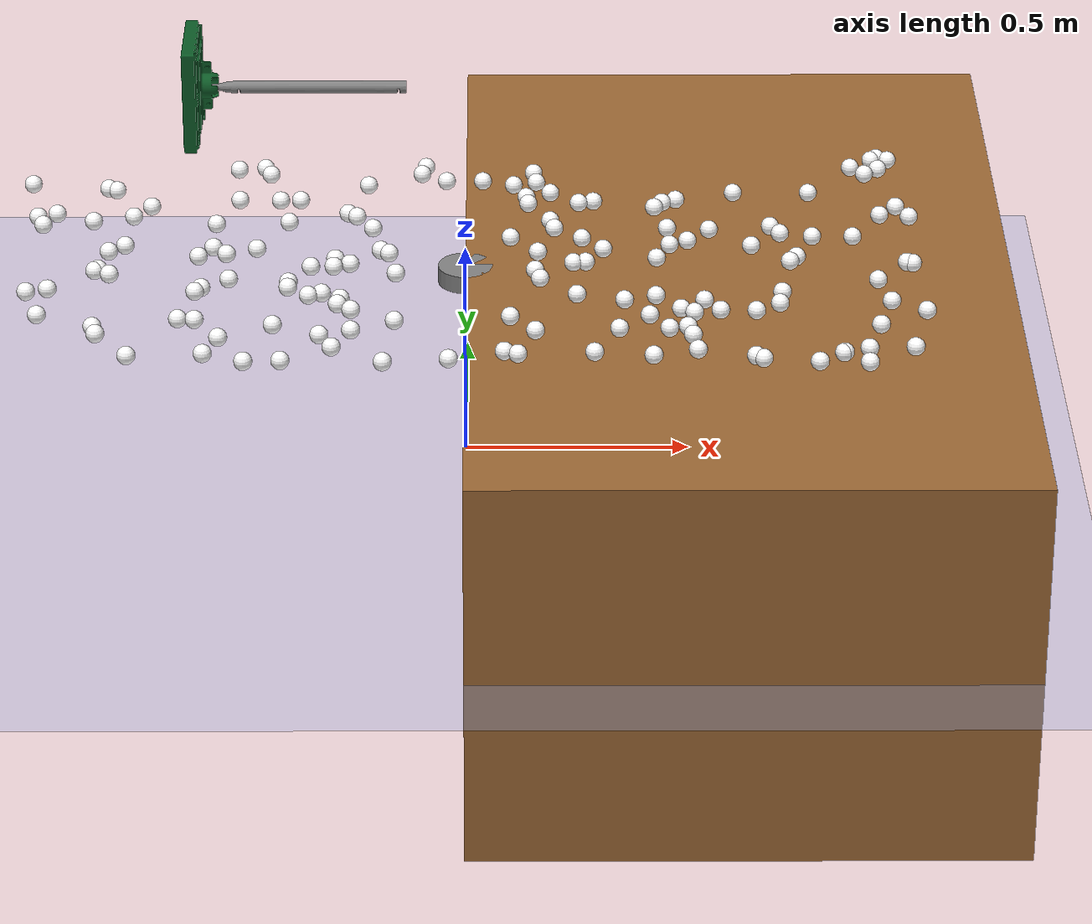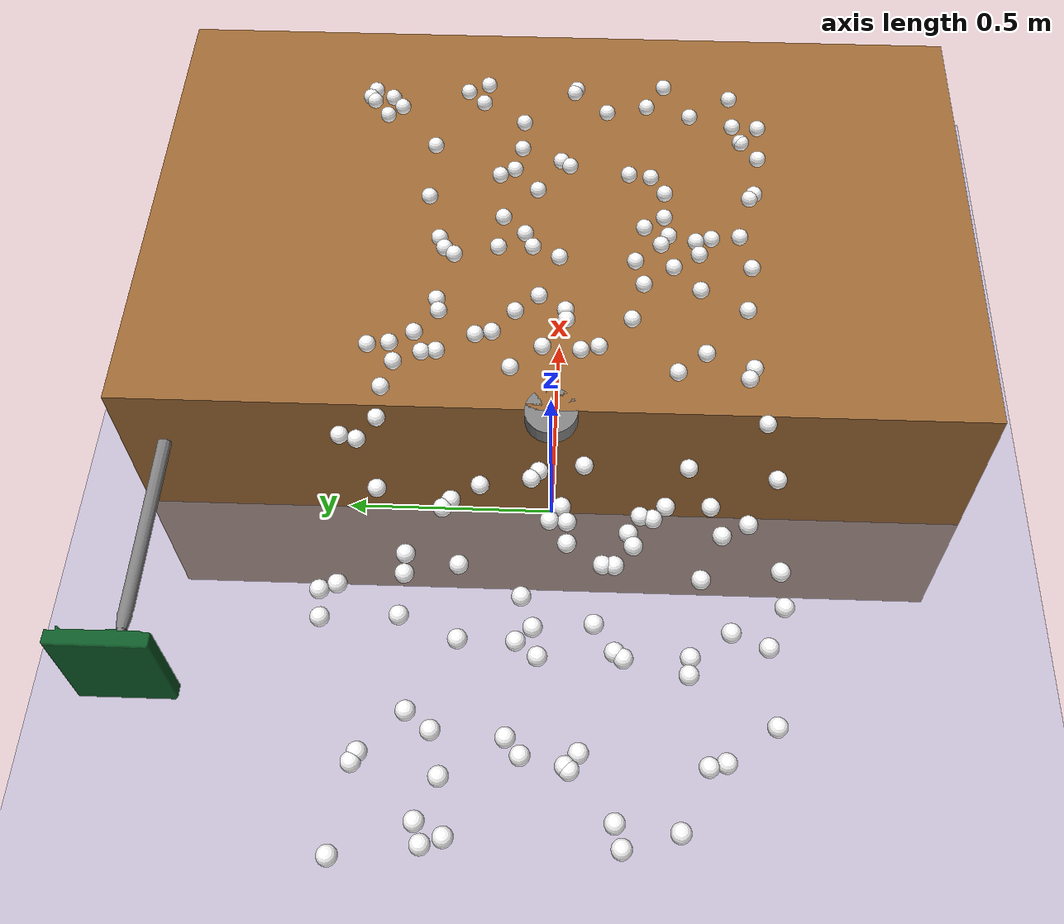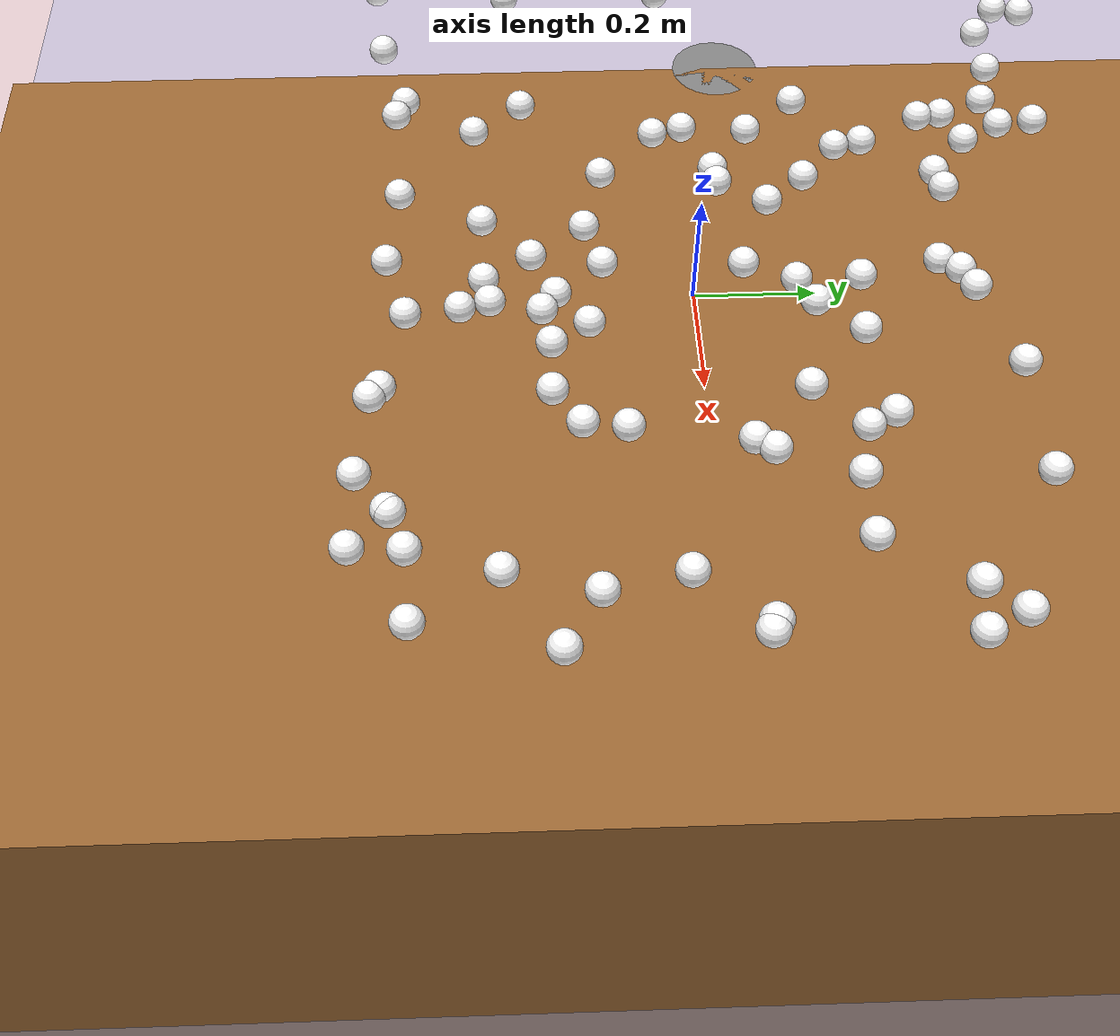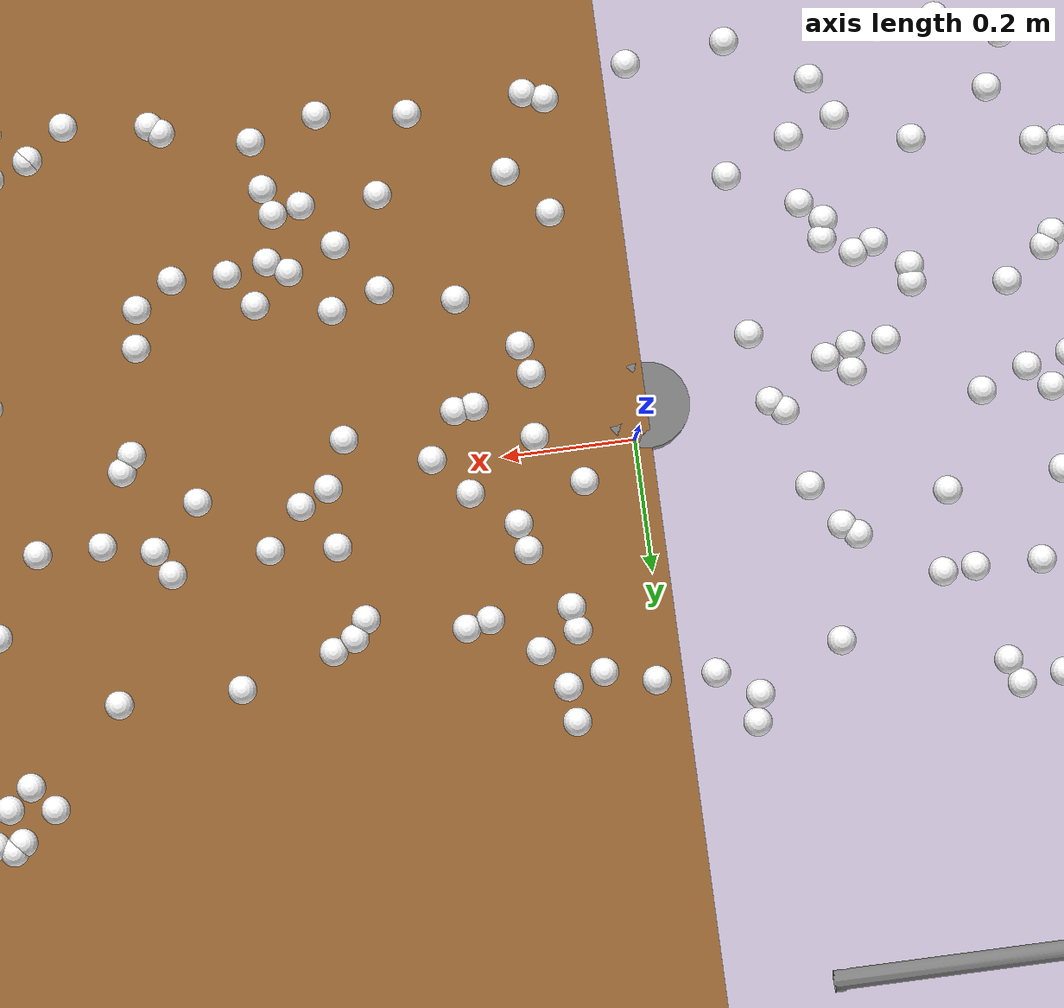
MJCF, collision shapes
<?xml version="1.0" encoding="UTF-8"?>

<mujoco model="ur5e_with_mop_and_dust">
   <compiler angle="radian" meshdir="assets" autolimits="true" />
   <option integrator="implicitfast" timestep="0.01" viscosity="0.01" />

   <!-- ================= DEFAULT SETTINGS ================= -->
   <default>
      <default class="ur5e">
         <default class="visual">
            <geom type="mesh" contype="0" conaffinity="0" group="2" />
         </default>
         <default class="collision">
            <geom type="capsule" group="3" />
            <default class="eef_collision">
               <geom type="cylinder" />
            </default>
         </default>
         <joint axis="0 1 0" range="-6.28319 6.28319" />
         <default class="joint_limited">
            <joint range="-3.1415 3.1415" />
         </default>
         <default class="position">
            <position ctrlrange="-6.2831 6.2831" kp="500" kv="25" forcerange="-150 150" />
            <default class="position_limited">
               <position ctrlrange="-3.1415 3.1415" />
            </default>
            <default class="position_small">
               <position kp="500" kv="25" forcerange="-28 28" />
            </default>
         </default>
      </default>
      <!-- Improved dust particle physics for MuJoCo 3.3.5 -->
      <default class="dust">
         <geom type="sphere" size="0.008" density="600" friction="0.8 0.1 0.05" condim="3"
            contype="1" conaffinity="1" group="1"
            solref="0.02 1.0" solimp="0.9 0.95 0.001" />
      </default>
   </default>

   <!-- ================= VISUAL SETTINGS ================= -->

   <!-- ================= MATERIALS + MESHES ================= -->
   <asset>
      <texture name="skybox" type="skybox" builtin="gradient"
         rgb1="0.7 0.85 1" rgb2="0.2 0.3 0.5" width="512" height="512" />
      <texture name="ground_tex" type="2d" builtin="checker" width="512" height="512"
         rgb1="0.2 0.4 0.8" rgb2="0.9 0.9 1" mark="cross" random="0.01" />
      <material name="ground_mat" texture="ground_tex" texrepeat="4 4"
         rgba="1 1 1 1" specular="1" shininess="1" reflectance="0.5" />
      <material name="black" rgba="0.033 0.033 0.033 1" />
      <material name="jointgray" rgba="0.278 0.278 0.278 1" />
      <material name="linkgray" rgba="0.82 0.82 0.82 1" />
      <material name="urblue" rgba="0.49 0.678 0.8 1" />
      <material name="table_material" rgba="0.6 0.4 0.2 1" />
      <material name="dust_material" rgba="1 1 1 1" />
      <!-- Purple material for the mop -->
      <material name="mop_purple" rgba="0.18 0.05 0.35 1" specular="0.5" shininess="0.6" />
      <!-- Dark green material for the mop -->
      <material name="mop_dark_green" rgba="0.05 0.35 0.15 1" specular="0.4" shininess="0.5" />

      <!-- Robot meshes -->
      <mesh file="base_0.obj" />
      <mesh file="base_1.obj" />
      <mesh file="shoulder_0.obj" />
      <mesh file="shoulder_1.obj" />
      <mesh file="shoulder_2.obj" />
      <mesh file="upperarm_0.obj" />
      <mesh file="upperarm_1.obj" />
      <mesh file="upperarm_2.obj" />
      <mesh file="upperarm_3.obj" />
      <mesh file="forearm_0.obj" />
      <mesh file="forearm_1.obj" />
      <mesh file="forearm_2.obj" />
      <mesh file="forearm_3.obj" />
      <mesh file="wrist1_0.obj" />
      <mesh file="wrist1_1.obj" />
      <mesh file="wrist1_2.obj" />
      <mesh file="wrist2_0.obj" />
      <mesh file="wrist2_1.obj" />
      <mesh file="wrist2_2.obj" />
      <mesh file="wrist3.obj" />

      <!-- Table and tool meshes -->
      <mesh file="test.stl" scale="1 1 1" name="table" />
      <mesh name="base_mesh" file="mop_base.obj" scale="0.002 0.002 0.002" />
      <mesh name="handle_mesh" file="mop_handle.obj" scale="0.0015 0.001 0.0015" />
   </asset>

   <!-- Visual settings: skybox + haze for infinite horizon look -->
   <visual>
      <map znear="0.01" zfar="200" fogstart="8" fogend="60" />
   </visual>

   <!-- ================= WORLD OBJECTS ================= -->

   <!-- ================= WORLD OBJECTS ================= -->
   <worldbody>
      <!-- Key lights -->
      <light name="sun_key" directional="true" pos="0 0 5" dir="0 0 -1"
         diffuse="0.15 0.15 0.15" ambient="0.15 0.15 0.15" specular="0.15 0.15 0.15"
         castshadow="false" />
      <!-- Ground with proper contact properties -->
      <geom name="ground" type="plane" size="10 10 0.1" material="ground_mat"
         rgba="0.5 0.5 0.5 1" pos="0 0 0"
         solref="0.02 1.0" solimp="0.9 0.95 0.001" friction="0.9 0.1 0.05" />
      <!-- pos="-1.35 -0.7 -0.01" -->

      <!-- Table positioned as base platform -->
      <body name="table" pos="0.6 0 0" euler="0 0 1.57079632679">
         <inertial mass="50" pos="0 0 0.05" diaginertia="10 10 5" />
         <geom name="table_collision" type="box" size="1 0.6 0.45" pos="0.0 0.0 0.01"
            material="table_material" group="3" contype="1" conaffinity="1"
            solref="0.02 1.0" solimp="0.9 0.95 0.001" friction="0.7 0.1 0.05" />
         <geom name="table_visual" type="mesh" mesh="table" material="table_material" class="visual"
            pos="1 0.6 0" />
         <!-- 45-deg wedges along table edges (width ≈ 0.10 m, thickness ≈ 0.02 m) -->
         <!-- Table collision box extents in table frame: x in [-2.7, 0], y in [-1.4, 0], top z ≈
        0.49 -->
         <!-- y = 0 edge (north), tilt toward -y -->

         <!-- y = -1.4 edge (south), tilt toward +y -->

         <!-- x = 0 edge (east), tilt toward -x -->

         <!-- x = -2.7 edge (west), tilt toward +x -->
      </body>

      <!-- UR5e Robot mounted ON the table surface -->
      <body name="base" pos="0.0 0.0 0.45" quat="1 0 0 1" childclass="ur5e">
         <inertial mass="4" pos="0 0 0" diaginertia="0.0044 0.0044 0.0072" />
         <geom mesh="base_0" material="black" class="visual" />
         <geom mesh="base_1" material="jointgray" class="visual" />
         <!-- Base collision geometry to sit on table -->
         <geom name="base_collision" type="cylinder" size="0.06 0.02" pos="0 0 -0.01"
            contype="1" conaffinity="1" group="3" friction="0.8 0.1 0.05" />

         <body name="shoulder_link" pos="0 0 0.163">
            <inertial mass="3.7" pos="0 0 0" diaginertia="0.0102 0.0102 0.0066" />
            <joint name="shoulder_pan" axis="0 0 1" />
            <geom mesh="shoulder_0" material="urblue" class="visual" />
            <geom mesh="shoulder_1" material="black" class="visual" />
            <geom mesh="shoulder_2" material="jointgray" class="visual" />

            <body name="upper_arm_link" pos="0 0.138 0" quat="1 0 1 0">
               <inertial mass="8.39" pos="0 0 0.2125" diaginertia="0.133 0.133 0.015" />
               <joint name="shoulder_lift" />
               <geom mesh="upperarm_0" material="linkgray" class="visual" />
               <geom mesh="upperarm_1" material="black" class="visual" />
               <geom mesh="upperarm_2" material="jointgray" class="visual" />
               <geom mesh="upperarm_3" material="urblue" class="visual" />

               <body name="forearm_link" pos="0 -0.131 0.425">
                  <inertial mass="2.27" pos="0 0 0.196" diaginertia="0.031 0.031 0.004" />
                  <joint name="elbow" class="joint_limited" />
                  <geom mesh="forearm_0" material="urblue" class="visual" />
                  <geom mesh="forearm_1" material="linkgray" class="visual" />
                  <geom mesh="forearm_2" material="black" class="visual" />
                  <geom mesh="forearm_3" material="jointgray" class="visual" />

                  <body name="wrist_1_link" pos="0 0 0.392" quat="1 0 1 0">
                     <inertial mass="1.219" pos="0 0.127 0" diaginertia="0.0025 0.0025 0.0021" />
                     <joint name="wrist_1" />
                     <geom mesh="wrist1_0" material="black" class="visual" />
                     <geom mesh="wrist1_1" material="urblue" class="visual" />
                     <geom mesh="wrist1_2" material="jointgray" class="visual" />

                     <body name="wrist_2_link" pos="0 0.127 0">
                        <inertial mass="1.219" pos="0 0 0.1" diaginertia="0.0025 0.0025 0.0021" />
                        <joint name="wrist_2" axis="0 0 1" />
                        <geom mesh="wrist2_0" material="black" class="visual" />
                        <geom mesh="wrist2_1" material="urblue" class="visual" />
                        <geom mesh="wrist2_2" material="jointgray" class="visual" />

                        <body name="wrist_3_link" pos="0 0 0.1">
                           <inertial mass="0.188" pos="0 0.077 0"
                              diaginertia="0.00013 0.0001 0.0001" />
                           <joint name="wrist_3" />
                           <geom mesh="wrist3" material="linkgray" class="visual" />

                           <!-- Mop tool attachment -->
                           <body name="mop_mount" pos="0 0.08 0" quat="0 1 0 1">

                              <body name="mop_tool" pos="0 -0.4 0">
                                 <inertial mass="0.5" pos="0 0 0" diaginertia="0.01 0.01 0.01" />
                                 <geom type="mesh" mesh="handle_mesh" density="500"
                                    friction="0.8 0.1 0.1" />

                                 <body name="mop_head">
                                    <joint name="mop_socket" type="ball" damping="0.5"
                                       limited="false" />
                                    <site name="ee_site" pos="0 -0.02 0.0" size="0.01"
                                       rgba="1 0 0 1" group="4" />
                                    <inertial mass="0.2" pos="0 -0.05 -0.1"
                                       diaginertia="0.005 0.005 0.005" />
                                    <geom type="mesh" mesh="base_mesh" density="500"
                                       friction="0.8 0.1 0.1"
                                       pos="0 -0.05 -0.1" material="mop_dark_green" />
                                 </body>  <!--
                      mop_head -->
                              </body>    <!--
                    mop_tool -->
                           </body>      <!--
                  mop_mount -->
                        </body>        <!--
                wrist_3_link -->
                     </body>          <!--
              wrist_2_link -->
                  </body>            <!--
            wrist_1_link -->
               </body>              <!--
          forearm_link -->
            </body>                <!--
        upper_arm_link -->
         </body>                  <!--
      shoulder_link -->
      </body>                    <!--
    base -->

      <!-- Dust particles properly positioned on table surface around the robot -->
      <!-- Distributed in a cleaning area away from robot base -->
      <!-- Dust balls (stable with solver parameters) -->

      <!-- Dust particles - stable until mop pushes them -->

      <body name="ball_1" pos="-0.7055 0.2521 0.48">
         <freejoint />
         <inertial mass="0.03" diaginertia="5.6e-05 5.6e-05 5.6e-05" pos="0 0 0" />
         <geom type="sphere" size="0.02" material="dust_material" />
      </body>
      <body name="ball_2" pos="-0.2825 -0.4197 0.48">
         <freejoint />
         <inertial mass="0.03" diaginertia="5.6e-05 5.6e-05 5.6e-05" pos="0 0 0" />
         <geom type="sphere" size="0.02" material="dust_material" />
      </body>
      <body name="ball_3" pos="0.8755 0.449 0.48">
         <freejoint />
         <inertial mass="0.03" diaginertia="5.6e-05 5.6e-05 5.6e-05" pos="0 0 0" />
         <geom type="sphere" size="0.02" material="dust_material" />
      </body>
      <body name="ball_4" pos="0.5409 0.1351 0.48">
         <freejoint />
         <inertial mass="0.03" diaginertia="5.6e-05 5.6e-05 5.6e-05" pos="0 0 0" />
         <geom type="sphere" size="0.02" material="dust_material" />
      </body>
      <body name="ball_5" pos="-0.9071 -0.15 0.48">
         <freejoint />
         <inertial mass="0.03" diaginertia="5.6e-05 5.6e-05 5.6e-05" pos="0 0 0" />
         <geom type="sphere" size="0.02" material="dust_material" />
      </body>
      <body name="ball_6" pos="-0.4169 0.2821 0.48">
         <freejoint />
         <inertial mass="0.03" diaginertia="5.6e-05 5.6e-05 5.6e-05" pos="0 0 0" />
         <geom type="sphere" size="0.02" material="dust_material" />
      </body>
      <body name="ball_7" pos="-0.5863 -0.1627 0.48">
         <freejoint />
         <inertial mass="0.03" diaginertia="5.6e-05 5.6e-05 5.6e-05" pos="0 0 0" />
         <geom type="sphere" size="0.02" material="dust_material" />
      </body>
      <body name="ball_8" pos="-0.9204 -0.2712 0.48">
         <freejoint />
         <inertial mass="0.03" diaginertia="5.6e-05 5.6e-05 5.6e-05" pos="0 0 0" />
         <geom type="sphere" size="0.02" material="dust_material" />
      </body>
      <body name="ball_9" pos="0.4209 -0.0038 0.48">
         <freejoint />
         <inertial mass="0.03" diaginertia="5.6e-05 5.6e-05 5.6e-05" pos="0 0 0" />
         <geom type="sphere" size="0.02" material="dust_material" />
      </body>
      <body name="ball_10" pos="0.6338 -0.472 0.48">
         <freejoint />
         <inertial mass="0.03" diaginertia="5.6e-05 5.6e-05 5.6e-05" pos="0 0 0" />
         <geom type="sphere" size="0.02" material="dust_material" />
      </body>
      <body name="ball_11" pos="0.6979 0.1153 0.48">
         <freejoint />
         <inertial mass="0.03" diaginertia="5.6e-05 5.6e-05 5.6e-05" pos="0 0 0" />
         <geom type="sphere" size="0.02" material="dust_material" />
      </body>
      <body name="ball_12" pos="-0.3395 -0.1815 0.48">
         <freejoint />
         <inertial mass="0.03" diaginertia="5.6e-05 5.6e-05 5.6e-05" pos="0 0 0" />
         <geom type="sphere" size="0.02" material="dust_material" />
      </body>
      <body name="ball_13" pos="0.9053 0.4146 0.48">
         <freejoint />
         <inertial mass="0.03" diaginertia="5.6e-05 5.6e-05 5.6e-05" pos="0 0 0" />
         <geom type="sphere" size="0.02" material="dust_material" />
      </body>
      <body name="ball_14" pos="-0.8305 0.1788 0.48">
         <freejoint />
         <inertial mass="0.03" diaginertia="5.6e-05 5.6e-05 5.6e-05" pos="0 0 0" />
         <geom type="sphere" size="0.02" material="dust_material" />
      </body>
      <body name="ball_15" pos="-0.4667 -0.4841 0.48">
         <freejoint />
         <inertial mass="0.03" diaginertia="5.6e-05 5.6e-05 5.6e-05" pos="0 0 0" />
         <geom type="sphere" size="0.02" material="dust_material" />
      </body>
      <body name="ball_16" pos="0.0982 -0.2803 0.48">
         <freejoint />
         <inertial mass="0.03" diaginertia="5.6e-05 5.6e-05 5.6e-05" pos="0 0 0" />
         <geom type="sphere" size="0.02" material="dust_material" />
      </body>
      <body name="ball_17" pos="-0.5261 0.0172 0.48">
         <freejoint />
         <inertial mass="0.03" diaginertia="5.6e-05 5.6e-05 5.6e-05" pos="0 0 0" />
         <geom type="sphere" size="0.02" material="dust_material" />
      </body>
      <body name="ball_18" pos="-0.7881 -0.3586 0.48">
         <freejoint />
         <inertial mass="0.03" diaginertia="5.6e-05 5.6e-05 5.6e-05" pos="0 0 0" />
         <geom type="sphere" size="0.02" material="dust_material" />
      </body>
      <body name="ball_19" pos="0.7686 0.0999 0.48">
         <freejoint />
         <inertial mass="0.03" diaginertia="5.6e-05 5.6e-05 5.6e-05" pos="0 0 0" />
         <geom type="sphere" size="0.02" material="dust_material" />
      </body>
      <body name="ball_20" pos="-0.6161 -0.2906 0.48">
         <freejoint />
         <inertial mass="0.03" diaginertia="5.6e-05 5.6e-05 5.6e-05" pos="0 0 0" />
         <geom type="sphere" size="0.02" material="dust_material" />
      </body>
      <body name="ball_21" pos="0.6023 0.3194 0.48">
         <freejoint />
         <inertial mass="0.03" diaginertia="5.6e-05 5.6e-05 5.6e-05" pos="0 0 0" />
         <geom type="sphere" size="0.02" material="dust_material" />
      </body>
      <body name="ball_22" pos="-0.2883 -0.0435 0.48">
         <freejoint />
         <inertial mass="0.03" diaginertia="5.6e-05 5.6e-05 5.6e-05" pos="0 0 0" />
         <geom type="sphere" size="0.02" material="dust_material" />
      </body>
      <body name="ball_23" pos="-0.9563 0.202 0.48">
         <freejoint />
         <inertial mass="0.03" diaginertia="5.6e-05 5.6e-05 5.6e-05" pos="0 0 0" />
         <geom type="sphere" size="0.02" material="dust_material" />
      </body>
      <body name="ball_24" pos="0.1139 -0.4511 0.48">
         <freejoint />
         <inertial mass="0.03" diaginertia="5.6e-05 5.6e-05 5.6e-05" pos="0 0 0" />
         <geom type="sphere" size="0.02" material="dust_material" />
      </body>
      <body name="ball_25" pos="-0.7779 -0.0802 0.48">
         <freejoint />
         <inertial mass="0.03" diaginertia="5.6e-05 5.6e-05 5.6e-05" pos="0 0 0" />
         <geom type="sphere" size="0.02" material="dust_material" />
      </body>
      <body name="ball_26" pos="-0.7151 -0.4572 0.48">
         <freejoint />
         <inertial mass="0.03" diaginertia="5.6e-05 5.6e-05 5.6e-05" pos="0 0 0" />
         <geom type="sphere" size="0.02" material="dust_material" />
      </body>
      <body name="ball_27" pos="-0.5177 0.441 0.48">
         <freejoint />
         <inertial mass="0.03" diaginertia="5.6e-05 5.6e-05 5.6e-05" pos="0 0 0" />
         <geom type="sphere" size="0.02" material="dust_material" />
      </body>
      <body name="ball_28" pos="0.9589 -0.4213 0.48">
         <freejoint />
         <inertial mass="0.03" diaginertia="5.6e-05 5.6e-05 5.6e-05" pos="0 0 0" />
         <geom type="sphere" size="0.02" material="dust_material" />
      </body>
      <body name="ball_29" pos="-0.2456 -0.2487 0.48">
         <freejoint />
         <inertial mass="0.03" diaginertia="5.6e-05 5.6e-05 5.6e-05" pos="0 0 0" />
         <geom type="sphere" size="0.02" material="dust_material" />
      </body>
      <body name="ball_30" pos="-0.2432 0.2011 0.48">
         <freejoint />
         <inertial mass="0.03" diaginertia="5.6e-05 5.6e-05 5.6e-05" pos="0 0 0" />
         <geom type="sphere" size="0.02" material="dust_material" />
      </body>
      <body name="ball_31" pos="-0.5087 0.2843 0.48">
         <freejoint />
         <inertial mass="0.03" diaginertia="5.6e-05 5.6e-05 5.6e-05" pos="0 0 0" />
         <geom type="sphere" size="0.02" material="dust_material" />
      </body>
      <body name="ball_32" pos="-0.8085 0.3448 0.48">
         <freejoint />
         <inertial mass="0.03" diaginertia="5.6e-05 5.6e-05 5.6e-05" pos="0 0 0" />
         <geom type="sphere" size="0.02" material="dust_material" />
      </body>
      <body name="ball_33" pos="-0.9528 -0.1633 0.48">
         <freejoint />
         <inertial mass="0.03" diaginertia="5.6e-05 5.6e-05 5.6e-05" pos="0 0 0" />
         <geom type="sphere" size="0.02" material="dust_material" />
      </body>
      <body name="ball_34" pos="-0.2631 0.2173 0.48">
         <freejoint />
         <inertial mass="0.03" diaginertia="5.6e-05 5.6e-05 5.6e-05" pos="0 0 0" />
         <geom type="sphere" size="0.02" material="dust_material" />
      </body>
      <body name="ball_35" pos="0.2864 0.2762 0.48">
         <freejoint />
         <inertial mass="0.03" diaginertia="5.6e-05 5.6e-05 5.6e-05" pos="0 0 0" />
         <geom type="sphere" size="0.02" material="dust_material" />
      </body>
      <body name="ball_36" pos="-0.4114 -0.3183 0.48">
         <freejoint />
         <inertial mass="0.03" diaginertia="5.6e-05 5.6e-05 5.6e-05" pos="0 0 0" />
         <geom type="sphere" size="0.02" material="dust_material" />
      </body>
      <body name="ball_37" pos="-0.3106 -0.1709 0.48">
         <freejoint />
         <inertial mass="0.03" diaginertia="5.6e-05 5.6e-05 5.6e-05" pos="0 0 0" />
         <geom type="sphere" size="0.02" material="dust_material" />
      </body>
      <body name="ball_38" pos="-0.2698 -0.1953 0.48">
         <freejoint />
         <inertial mass="0.03" diaginertia="5.6e-05 5.6e-05 5.6e-05" pos="0 0 0" />
         <geom type="sphere" size="0.02" material="dust_material" />
      </body>
      <body name="ball_39" pos="0.1902 0.3199 0.48">
         <freejoint />
         <inertial mass="0.03" diaginertia="5.6e-05 5.6e-05 5.6e-05" pos="0 0 0" />
         <geom type="sphere" size="0.02" material="dust_material" />
      </body>
      <body name="ball_40" pos="-0.8037 -0.0559 0.48">
         <freejoint />
         <inertial mass="0.03" diaginertia="5.6e-05 5.6e-05 5.6e-05" pos="0 0 0" />
         <geom type="sphere" size="0.02" material="dust_material" />
      </body>
      <body name="ball_41" pos="0.9257 0.2061 0.48">
         <freejoint />
         <inertial mass="0.03" diaginertia="5.6e-05 5.6e-05 5.6e-05" pos="0 0 0" />
         <geom type="sphere" size="0.02" material="dust_material" />
      </body>
      <body name="ball_42" pos="-0.2063 0.1425 0.48">
         <freejoint />
         <inertial mass="0.03" diaginertia="5.6e-05 5.6e-05 5.6e-05" pos="0 0 0" />
         <geom type="sphere" size="0.02" material="dust_material" />
      </body>
      <body name="ball_43" pos="0.1886 0.1804 0.48">
         <freejoint />
         <inertial mass="0.03" diaginertia="5.6e-05 5.6e-05 5.6e-05" pos="0 0 0" />
         <geom type="sphere" size="0.02" material="dust_material" />
      </body>
      <body name="ball_44" pos="-0.5565 0.0491 0.48">
         <freejoint />
         <inertial mass="0.03" diaginertia="5.6e-05 5.6e-05 5.6e-05" pos="0 0 0" />
         <geom type="sphere" size="0.02" material="dust_material" />
      </body>
      <body name="ball_45" pos="0.1359 0.2984 0.48">
         <freejoint />
         <inertial mass="0.03" diaginertia="5.6e-05 5.6e-05 5.6e-05" pos="0 0 0" />
         <geom type="sphere" size="0.02" material="dust_material" />
      </body>
      <body name="ball_46" pos="0.2434 -0.177 0.48">
         <freejoint />
         <inertial mass="0.03" diaginertia="5.6e-05 5.6e-05 5.6e-05" pos="0 0 0" />
         <geom type="sphere" size="0.02" material="dust_material" />
      </body>
      <body name="ball_47" pos="-0.5253 -0.3758 0.48">
         <freejoint />
         <inertial mass="0.03" diaginertia="5.6e-05 5.6e-05 5.6e-05" pos="0 0 0" />
         <geom type="sphere" size="0.02" material="dust_material" />
      </body>
      <body name="ball_48" pos="0.6187 -0.4603 0.48">
         <freejoint />
         <inertial mass="0.03" diaginertia="5.6e-05 5.6e-05 5.6e-05" pos="0 0 0" />
         <geom type="sphere" size="0.02" material="dust_material" />
      </body>
      <body name="ball_49" pos="-0.7864 0.0294 0.48">
         <freejoint />
         <inertial mass="0.03" diaginertia="5.6e-05 5.6e-05 5.6e-05" pos="0 0 0" />
         <geom type="sphere" size="0.02" material="dust_material" />
      </body>
      <body name="ball_50" pos="-0.9419 0.1613 0.48">
         <freejoint />
         <inertial mass="0.03" diaginertia="5.6e-05 5.6e-05 5.6e-05" pos="0 0 0" />
         <geom type="sphere" size="0.02" material="dust_material" />
      </body>
      <body name="ball_51" pos="-0.2207 0.3592 0.48">
         <freejoint />
         <inertial mass="0.03" diaginertia="5.6e-05 5.6e-05 5.6e-05" pos="0 0 0" />
         <geom type="sphere" size="0.02" material="dust_material" />
      </body>
      <body name="ball_52" pos="-0.1004 0.4171 0.48">
         <freejoint />
         <inertial mass="0.03" diaginertia="5.6e-05 5.6e-05 5.6e-05" pos="0 0 0" />
         <geom type="sphere" size="0.02" material="dust_material" />
      </body>
      <body name="ball_53" pos="0.4885 -0.3645 0.48">
         <freejoint />
         <inertial mass="0.03" diaginertia="5.6e-05 5.6e-05 5.6e-05" pos="0 0 0" />
         <geom type="sphere" size="0.02" material="dust_material" />
      </body>
      <body name="ball_54" pos="0.9249 0.488 0.48">
         <freejoint />
         <inertial mass="0.03" diaginertia="5.6e-05 5.6e-05 5.6e-05" pos="0 0 0" />
         <geom type="sphere" size="0.02" material="dust_material" />
      </body>
      <body name="ball_55" pos="0.4788 -0.3271 0.48">
         <freejoint />
         <inertial mass="0.03" diaginertia="5.6e-05 5.6e-05 5.6e-05" pos="0 0 0" />
         <geom type="sphere" size="0.02" material="dust_material" />
      </body>
      <body name="ball_56" pos="0.0852 -0.4393 0.48">
         <freejoint />
         <inertial mass="0.03" diaginertia="5.6e-05 5.6e-05 5.6e-05" pos="0 0 0" />
         <geom type="sphere" size="0.02" material="dust_material" />
      </body>
      <body name="ball_57" pos="0.772 0.3185 0.48">
         <freejoint />
         <inertial mass="0.03" diaginertia="5.6e-05 5.6e-05 5.6e-05" pos="0 0 0" />
         <geom type="sphere" size="0.02" material="dust_material" />
      </body>
      <body name="ball_58" pos="0.4912 0.0803 0.48">
         <freejoint />
         <inertial mass="0.03" diaginertia="5.6e-05 5.6e-05 5.6e-05" pos="0 0 0" />
         <geom type="sphere" size="0.02" material="dust_material" />
      </body>
      <body name="ball_59" pos="0.9375 0.4415 0.48">
         <freejoint />
         <inertial mass="0.03" diaginertia="5.6e-05 5.6e-05 5.6e-05" pos="0 0 0" />
         <geom type="sphere" size="0.02" material="dust_material" />
      </body>
      <body name="ball_60" pos="0.2373 -0.0261 0.48">
         <freejoint />
         <inertial mass="0.03" diaginertia="5.6e-05 5.6e-05 5.6e-05" pos="0 0 0" />
         <geom type="sphere" size="0.02" material="dust_material" />
      </body>
      <body name="ball_61" pos="0.4966 -0.4322 0.48">
         <freejoint />
         <inertial mass="0.03" diaginertia="5.6e-05 5.6e-05 5.6e-05" pos="0 0 0" />
         <geom type="sphere" size="0.02" material="dust_material" />
      </body>
      <body name="ball_62" pos="-0.1515 -0.0764 0.48">
         <freejoint />
         <inertial mass="0.03" diaginertia="5.6e-05 5.6e-05 5.6e-05" pos="0 0 0" />
         <geom type="sphere" size="0.02" material="dust_material" />
      </body>
      <body name="ball_63" pos="-0.3846 -0.1189 0.48">
         <freejoint />
         <inertial mass="0.03" diaginertia="5.6e-05 5.6e-05 5.6e-05" pos="0 0 0" />
         <geom type="sphere" size="0.02" material="dust_material" />
      </body>
      <body name="ball_64" pos="-0.2432 -0.3427 0.48">
         <freejoint />
         <inertial mass="0.03" diaginertia="5.6e-05 5.6e-05 5.6e-05" pos="0 0 0" />
         <geom type="sphere" size="0.02" material="dust_material" />
      </body>
      <body name="ball_65" pos="0.8055 -0.4466 0.48">
         <freejoint />
         <inertial mass="0.03" diaginertia="5.6e-05 5.6e-05 5.6e-05" pos="0 0 0" />
         <geom type="sphere" size="0.02" material="dust_material" />
      </body>
      <body name="ball_66" pos="0.4144 -0.1835 0.48">
         <freejoint />
         <inertial mass="0.03" diaginertia="5.6e-05 5.6e-05 5.6e-05" pos="0 0 0" />
         <geom type="sphere" size="0.02" material="dust_material" />
      </body>
      <body name="ball_67" pos="0.1533 -0.0613 0.48">
         <freejoint />
         <inertial mass="0.03" diaginertia="5.6e-05 5.6e-05 5.6e-05" pos="0 0 0" />
         <geom type="sphere" size="0.02" material="dust_material" />
      </body>
      <body name="ball_68" pos="0.8609 -0.4262 0.48">
         <freejoint />
         <inertial mass="0.03" diaginertia="5.6e-05 5.6e-05 5.6e-05" pos="0 0 0" />
         <geom type="sphere" size="0.02" material="dust_material" />
      </body>
      <body name="ball_69" pos="0.4392 -0.3346 0.48">
         <freejoint />
         <inertial mass="0.03" diaginertia="5.6e-05 5.6e-05 5.6e-05" pos="0 0 0" />
         <geom type="sphere" size="0.02" material="dust_material" />
      </body>
      <body name="ball_70" pos="-0.1725 -0.4867 0.48">
         <freejoint />
         <inertial mass="0.03" diaginertia="5.6e-05 5.6e-05 5.6e-05" pos="0 0 0" />
         <geom type="sphere" size="0.02" material="dust_material" />
      </body>
      <body name="ball_71" pos="0.4406 0.2701 0.48">
         <freejoint />
         <inertial mass="0.03" diaginertia="5.6e-05 5.6e-05 5.6e-05" pos="0 0 0" />
         <geom type="sphere" size="0.02" material="dust_material" />
      </body>
      <body name="ball_72" pos="0.7292 0.0015 0.48">
         <freejoint />
         <inertial mass="0.03" diaginertia="5.6e-05 5.6e-05 5.6e-05" pos="0 0 0" />
         <geom type="sphere" size="0.02" material="dust_material" />
      </body>
      <body name="ball_73" pos="0.4669 -0.2445 0.48">
         <freejoint />
         <inertial mass="0.03" diaginertia="5.6e-05 5.6e-05 5.6e-05" pos="0 0 0" />
         <geom type="sphere" size="0.02" material="dust_material" />
      </body>
      <body name="ball_74" pos="0.1521 -0.3451 0.48">
         <freejoint />
         <inertial mass="0.03" diaginertia="5.6e-05 5.6e-05 5.6e-05" pos="0 0 0" />
         <geom type="sphere" size="0.02" material="dust_material" />
      </body>
      <body name="ball_75" pos="-0.3721 0.2836 0.48">
         <freejoint />
         <inertial mass="0.03" diaginertia="5.6e-05 5.6e-05 5.6e-05" pos="0 0 0" />
         <geom type="sphere" size="0.02" material="dust_material" />
      </body>
      <body name="ball_76" pos="0.0378 0.3802 0.48">
         <freejoint />
         <inertial mass="0.03" diaginertia="5.6e-05 5.6e-05 5.6e-05" pos="0 0 0" />
         <geom type="sphere" size="0.02" material="dust_material" />
      </body>
      <body name="ball_77" pos="0.1 0.0962 0.48">
         <freejoint />
         <inertial mass="0.03" diaginertia="5.6e-05 5.6e-05 5.6e-05" pos="0 0 0" />
         <geom type="sphere" size="0.02" material="dust_material" />
      </body>
      <body name="ball_78" pos="0.2769 -0.4433 0.48">
         <freejoint />
         <inertial mass="0.03" diaginertia="5.6e-05 5.6e-05 5.6e-05" pos="0 0 0" />
         <geom type="sphere" size="0.02" material="dust_material" />
      </body>
      <body name="ball_79" pos="-0.811 -0.0632 0.48">
         <freejoint />
         <inertial mass="0.03" diaginertia="5.6e-05 5.6e-05 5.6e-05" pos="0 0 0" />
         <geom type="sphere" size="0.02" material="dust_material" />
      </body>
      <body name="ball_80" pos="0.6315 0.0557 0.48">
         <freejoint />
         <inertial mass="0.03" diaginertia="5.6e-05 5.6e-05 5.6e-05" pos="0 0 0" />
         <geom type="sphere" size="0.02" material="dust_material" />
      </body>
      <body name="ball_81" pos="-0.58 -0.2938 0.48">
         <freejoint />
         <inertial mass="0.03" diaginertia="5.6e-05 5.6e-05 5.6e-05" pos="0 0 0" />
         <geom type="sphere" size="0.02" material="dust_material" />
      </body>
      <body name="ball_82" pos="-0.9812 0.3669 0.48">
         <freejoint />
         <inertial mass="0.03" diaginertia="5.6e-05 5.6e-05 5.6e-05" pos="0 0 0" />
         <geom type="sphere" size="0.02" material="dust_material" />
      </body>
      <body name="ball_83" pos="-0.3381 -0.0447 0.48">
         <freejoint />
         <inertial mass="0.03" diaginertia="5.6e-05 5.6e-05 5.6e-05" pos="0 0 0" />
         <geom type="sphere" size="0.02" material="dust_material" />
      </body>
      <body name="ball_84" pos="-0.5873 0.0053 0.48">
         <freejoint />
         <inertial mass="0.03" diaginertia="5.6e-05 5.6e-05 5.6e-05" pos="0 0 0" />
         <geom type="sphere" size="0.02" material="dust_material" />
      </body>
      <body name="ball_85" pos="-0.7521 0.0587 0.48">
         <freejoint />
         <inertial mass="0.03" diaginertia="5.6e-05 5.6e-05 5.6e-05" pos="0 0 0" />
         <geom type="sphere" size="0.02" material="dust_material" />
      </body>
      <body name="ball_86" pos="0.8929 -0.3191 0.48">
         <freejoint />
         <inertial mass="0.03" diaginertia="5.6e-05 5.6e-05 5.6e-05" pos="0 0 0" />
         <geom type="sphere" size="0.02" material="dust_material" />
      </body>
      <body name="ball_87" pos="0.7519 -0.486 0.48">
         <freejoint />
         <inertial mass="0.03" diaginertia="5.6e-05 5.6e-05 5.6e-05" pos="0 0 0" />
         <geom type="sphere" size="0.02" material="dust_material" />
      </body>
      <body name="ball_88" pos="0.7134 -0.0203 0.48">
         <freejoint />
         <inertial mass="0.03" diaginertia="5.6e-05 5.6e-05 5.6e-05" pos="0 0 0" />
         <geom type="sphere" size="0.02" material="dust_material" />
      </body>
      <body name="ball_89" pos="-0.2525 -0.0311 0.48">
         <freejoint />
         <inertial mass="0.03" diaginertia="5.6e-05 5.6e-05 5.6e-05" pos="0 0 0" />
         <geom type="sphere" size="0.02" material="dust_material" />
      </body>
      <body name="ball_90" pos="-0.4441 0.4149 0.48">
         <freejoint />
         <inertial mass="0.03" diaginertia="5.6e-05 5.6e-05 5.6e-05" pos="0 0 0" />
         <geom type="sphere" size="0.02" material="dust_material" />
      </body>
      <body name="ball_91" pos="-0.1508 -0.2992 0.48">
         <freejoint />
         <inertial mass="0.03" diaginertia="5.6e-05 5.6e-05 5.6e-05" pos="0 0 0" />
         <geom type="sphere" size="0.02" material="dust_material" />
      </body>
      <body name="ball_92" pos="0.901 -0.1098 0.48">
         <freejoint />
         <inertial mass="0.03" diaginertia="5.6e-05 5.6e-05 5.6e-05" pos="0 0 0" />
         <geom type="sphere" size="0.02" material="dust_material" />
      </body>
      <body name="ball_93" pos="-0.3103 -0.3641 0.48">
         <freejoint />
         <inertial mass="0.03" diaginertia="5.6e-05 5.6e-05 5.6e-05" pos="0 0 0" />
         <geom type="sphere" size="0.02" material="dust_material" />
      </body>
      <body name="ball_94" pos="-0.0332 -0.4729 0.48">
         <freejoint />
         <inertial mass="0.03" diaginertia="5.6e-05 5.6e-05 5.6e-05" pos="0 0 0" />
         <geom type="sphere" size="0.02" material="dust_material" />
      </body>
      <body name="ball_95" pos="-0.168 0.0195 0.48">
         <freejoint />
         <inertial mass="0.03" diaginertia="5.6e-05 5.6e-05 5.6e-05" pos="0 0 0" />
         <geom type="sphere" size="0.02" material="dust_material" />
      </body>
      <body name="ball_96" pos="-0.0442 0.3805 0.48">
         <freejoint />
         <inertial mass="0.03" diaginertia="5.6e-05 5.6e-05 5.6e-05" pos="0 0 0" />
         <geom type="sphere" size="0.02" material="dust_material" />
      </body>
      <body name="ball_97" pos="-0.3937 0.1733 0.48">
         <freejoint />
         <inertial mass="0.03" diaginertia="5.6e-05 5.6e-05 5.6e-05" pos="0 0 0" />
         <geom type="sphere" size="0.02" material="dust_material" />
      </body>
      <body name="ball_98" pos="-0.5542 -0.4488 0.48">
         <freejoint />
         <inertial mass="0.03" diaginertia="5.6e-05 5.6e-05 5.6e-05" pos="0 0 0" />
         <geom type="sphere" size="0.02" material="dust_material" />
      </body>
      <body name="ball_99" pos="0.6814 -0.2201 0.48">
         <freejoint />
         <inertial mass="0.03" diaginertia="5.6e-05 5.6e-05 5.6e-05" pos="0 0 0" />
         <geom type="sphere" size="0.02" material="dust_material" />
      </body>
      <body name="ball_100" pos="-0.4577 0.4493 0.48">
         <freejoint />
         <inertial mass="0.03" diaginertia="5.6e-05 5.6e-05 5.6e-05" pos="0 0 0" />
         <geom type="sphere" size="0.02" material="dust_material" />
      </body>
      <body name="ball_101" pos="0.629 -0.254 0.48">
         <freejoint />
         <inertial mass="0.03" diaginertia="5.6e-05 5.6e-05 5.6e-05" pos="0 0 0" />
         <geom type="sphere" size="0.02" material="dust_material" />
      </body>
      <body name="ball_102" pos="0.5519 -0.2523 0.48">
         <freejoint />
         <inertial mass="0.03" diaginertia="5.6e-05 5.6e-05 5.6e-05" pos="0 0 0" />
         <geom type="sphere" size="0.02" material="dust_material" />
      </body>
      <body name="ball_103" pos="0.3041 0.0396 0.48">
         <freejoint />
         <inertial mass="0.03" diaginertia="5.6e-05 5.6e-05 5.6e-05" pos="0 0 0" />
         <geom type="sphere" size="0.02" material="dust_material" />
      </body>
      <body name="ball_104" pos="0.1402 0.2656 0.48">
         <freejoint />
         <inertial mass="0.03" diaginertia="5.6e-05 5.6e-05 5.6e-05" pos="0 0 0" />
         <geom type="sphere" size="0.02" material="dust_material" />
      </body>
      <body name="ball_105" pos="0.3986 -0.2738 0.48">
         <freejoint />
         <inertial mass="0.03" diaginertia="5.6e-05 5.6e-05 5.6e-05" pos="0 0 0" />
         <geom type="sphere" size="0.02" material="dust_material" />
      </body>
      <body name="ball_106" pos="-0.2857 -0.0072 0.48">
         <freejoint />
         <inertial mass="0.03" diaginertia="5.6e-05 5.6e-05 5.6e-05" pos="0 0 0" />
         <geom type="sphere" size="0.02" material="dust_material" />
      </body>
      <body name="ball_107" pos="0.9698 -0.0258 0.48">
         <freejoint />
         <inertial mass="0.03" diaginertia="5.6e-05 5.6e-05 5.6e-05" pos="0 0 0" />
         <geom type="sphere" size="0.02" material="dust_material" />
      </body>
      <body name="ball_108" pos="0.1589 0.3736 0.48">
         <freejoint />
         <inertial mass="0.03" diaginertia="5.6e-05 5.6e-05 5.6e-05" pos="0 0 0" />
         <geom type="sphere" size="0.02" material="dust_material" />
      </body>
      <body name="ball_109" pos="-0.5735 -0.1452 0.48">
         <freejoint />
         <inertial mass="0.03" diaginertia="5.6e-05 5.6e-05 5.6e-05" pos="0 0 0" />
         <geom type="sphere" size="0.02" material="dust_material" />
      </body>
      <body name="ball_110" pos="0.4481 0.1424 0.48">
         <freejoint />
         <inertial mass="0.03" diaginertia="5.6e-05 5.6e-05 5.6e-05" pos="0 0 0" />
         <geom type="sphere" size="0.02" material="dust_material" />
      </body>
      <body name="ball_111" pos="0.2533 0.269 0.48">
         <freejoint />
         <inertial mass="0.03" diaginertia="5.6e-05 5.6e-05 5.6e-05" pos="0 0 0" />
         <geom type="sphere" size="0.02" material="dust_material" />
      </body>
      <body name="ball_112" pos="0.4222 0.2459 0.48">
         <freejoint />
         <inertial mass="0.03" diaginertia="5.6e-05 5.6e-05 5.6e-05" pos="0 0 0" />
         <geom type="sphere" size="0.02" material="dust_material" />
      </body>
      <body name="ball_113" pos="-0.2754 -0.2216 0.48">
         <freejoint />
         <inertial mass="0.03" diaginertia="5.6e-05 5.6e-05 5.6e-05" pos="0 0 0" />
         <geom type="sphere" size="0.02" material="dust_material" />
      </body>
      <body name="ball_114" pos="-0.5155 -0.104 0.48">
         <freejoint />
         <inertial mass="0.03" diaginertia="5.6e-05 5.6e-05 5.6e-05" pos="0 0 0" />
         <geom type="sphere" size="0.02" material="dust_material" />
      </body>
      <body name="ball_115" pos="-0.46 0.0427 0.48">
         <freejoint />
         <inertial mass="0.03" diaginertia="5.6e-05 5.6e-05 5.6e-05" pos="0 0 0" />
         <geom type="sphere" size="0.02" material="dust_material" />
      </body>
      <body name="ball_116" pos="-0.7423 0.2018 0.48">
         <freejoint />
         <inertial mass="0.03" diaginertia="5.6e-05 5.6e-05 5.6e-05" pos="0 0 0" />
         <geom type="sphere" size="0.02" material="dust_material" />
      </body>
      <body name="ball_117" pos="0.9379 0.4991 0.48">
         <freejoint />
         <inertial mass="0.03" diaginertia="5.6e-05 5.6e-05 5.6e-05" pos="0 0 0" />
         <geom type="sphere" size="0.02" material="dust_material" />
      </body>
      <body name="ball_118" pos="0.2579 0.0925 0.48">
         <freejoint />
         <inertial mass="0.03" diaginertia="5.6e-05 5.6e-05 5.6e-05" pos="0 0 0" />
         <geom type="sphere" size="0.02" material="dust_material" />
      </body>
      <body name="ball_119" pos="-0.7891 0.3354 0.48">
         <freejoint />
         <inertial mass="0.03" diaginertia="5.6e-05 5.6e-05 5.6e-05" pos="0 0 0" />
         <geom type="sphere" size="0.02" material="dust_material" />
      </body>
      <body name="ball_120" pos="0.1532 0.4227 0.48">
         <freejoint />
         <inertial mass="0.03" diaginertia="5.6e-05 5.6e-05 5.6e-05" pos="0 0 0" />
         <geom type="sphere" size="0.02" material="dust_material" />
      </body>
      <body name="ball_121" pos="-0.3852 -0.1431 0.48">
         <freejoint />
         <inertial mass="0.03" diaginertia="5.6e-05 5.6e-05 5.6e-05" pos="0 0 0" />
         <geom type="sphere" size="0.02" material="dust_material" />
      </body>
      <body name="ball_122" pos="0.8583 0.0993 0.48">
         <freejoint />
         <inertial mass="0.03" diaginertia="5.6e-05 5.6e-05 5.6e-05" pos="0 0 0" />
         <geom type="sphere" size="0.02" material="dust_material" />
      </body>
      <body name="ball_123" pos="0.9964 -0.2542 0.48">
         <freejoint />
         <inertial mass="0.03" diaginertia="5.6e-05 5.6e-05 5.6e-05" pos="0 0 0" />
         <geom type="sphere" size="0.02" material="dust_material" />
      </body>
      <body name="ball_124" pos="0.4512 0.0604 0.48">
         <freejoint />
         <inertial mass="0.03" diaginertia="5.6e-05 5.6e-05 5.6e-05" pos="0 0 0" />
         <geom type="sphere" size="0.02" material="dust_material" />
      </body>
      <body name="ball_125" pos="0.9644 0.2482 0.48">
         <freejoint />
         <inertial mass="0.03" diaginertia="5.6e-05 5.6e-05 5.6e-05" pos="0 0 0" />
         <geom type="sphere" size="0.02" material="dust_material" />
      </body>
      <body name="ball_126" pos="0.2646 -0.0234 0.48">
         <freejoint />
         <inertial mass="0.03" diaginertia="5.6e-05 5.6e-05 5.6e-05" pos="0 0 0" />
         <geom type="sphere" size="0.02" material="dust_material" />
      </body>
      <body name="ball_127" pos="0.1076 0.3597 0.48">
         <freejoint />
         <inertial mass="0.03" diaginertia="5.6e-05 5.6e-05 5.6e-05" pos="0 0 0" />
         <geom type="sphere" size="0.02" material="dust_material" />
      </body>
      <body name="ball_128" pos="0.6891 -0.1667 0.48">
         <freejoint />
         <inertial mass="0.03" diaginertia="5.6e-05 5.6e-05 5.6e-05" pos="0 0 0" />
         <geom type="sphere" size="0.02" material="dust_material" />
      </body>
      <body name="ball_129" pos="0.9235 -0.2099 0.48">
         <freejoint />
         <inertial mass="0.03" diaginertia="5.6e-05 5.6e-05 5.6e-05" pos="0 0 0" />
         <geom type="sphere" size="0.02" material="dust_material" />
      </body>
      <body name="ball_130" pos="0.1639 -0.1019 0.48">
         <freejoint />
         <inertial mass="0.03" diaginertia="5.6e-05 5.6e-05 5.6e-05" pos="0 0 0" />
         <geom type="sphere" size="0.02" material="dust_material" />
      </body>
      <body name="ball_131" pos="0.9907 0.198 0.48">
         <freejoint />
         <inertial mass="0.03" diaginertia="5.6e-05 5.6e-05 5.6e-05" pos="0 0 0" />
         <geom type="sphere" size="0.02" material="dust_material" />
      </body>
      <body name="ball_132" pos="0.6778 0.1505 0.48">
         <freejoint />
         <inertial mass="0.03" diaginertia="5.6e-05 5.6e-05 5.6e-05" pos="0 0 0" />
         <geom type="sphere" size="0.02" material="dust_material" />
      </body>
      <body name="ball_133" pos="-0.7969 -0.3255 0.48">
         <freejoint />
         <inertial mass="0.03" diaginertia="5.6e-05 5.6e-05 5.6e-05" pos="0 0 0" />
         <geom type="sphere" size="0.02" material="dust_material" />
      </body>
      <body name="ball_134" pos="0.332 -0.3359 0.48">
         <freejoint />
         <inertial mass="0.03" diaginertia="5.6e-05 5.6e-05 5.6e-05" pos="0 0 0" />
         <geom type="sphere" size="0.02" material="dust_material" />
      </body>
      <body name="ball_135" pos="0.9823 -0.0308 0.48">
         <freejoint />
         <inertial mass="0.03" diaginertia="5.6e-05 5.6e-05 5.6e-05" pos="0 0 0" />
         <geom type="sphere" size="0.02" material="dust_material" />
      </body>
      <body name="ball_136" pos="-0.9148 0.2163 0.48">
         <freejoint />
         <inertial mass="0.03" diaginertia="5.6e-05 5.6e-05 5.6e-05" pos="0 0 0" />
         <geom type="sphere" size="0.02" material="dust_material" />
      </body>
      <body name="ball_137" pos="0.1973 0.1425 0.48">
         <freejoint />
         <inertial mass="0.03" diaginertia="5.6e-05 5.6e-05 5.6e-05" pos="0 0 0" />
         <geom type="sphere" size="0.02" material="dust_material" />
      </body>
      <body name="ball_138" pos="-0.5555 0.1641 0.48">
         <freejoint />
         <inertial mass="0.03" diaginertia="5.6e-05 5.6e-05 5.6e-05" pos="0 0 0" />
         <geom type="sphere" size="0.02" material="dust_material" />
      </body>
      <body name="ball_139" pos="0.1598 0.0261 0.48">
         <freejoint />
         <inertial mass="0.03" diaginertia="5.6e-05 5.6e-05 5.6e-05" pos="0 0 0" />
         <geom type="sphere" size="0.02" material="dust_material" />
      </body>
      <body name="ball_140" pos="0.9627 0.4876 0.48">
         <freejoint />
         <inertial mass="0.03" diaginertia="5.6e-05 5.6e-05 5.6e-05" pos="0 0 0" />
         <geom type="sphere" size="0.02" material="dust_material" />
      </body>
      <body name="ball_141" pos="0.8073 -0.445 0.48">
         <freejoint />
         <inertial mass="0.03" diaginertia="5.6e-05 5.6e-05 5.6e-05" pos="0 0 0" />
         <geom type="sphere" size="0.02" material="dust_material" />
      </body>
      <body name="ball_142" pos="0.3458 -0.2036 0.48">
         <freejoint />
         <inertial mass="0.03" diaginertia="5.6e-05 5.6e-05 5.6e-05" pos="0 0 0" />
         <geom type="sphere" size="0.02" material="dust_material" />
      </body>
      <body name="ball_143" pos="-0.1865 0.0348 0.48">
         <freejoint />
         <inertial mass="0.03" diaginertia="5.6e-05 5.6e-05 5.6e-05" pos="0 0 0" />
         <geom type="sphere" size="0.02" material="dust_material" />
      </body>
      <body name="ball_144" pos="-0.3886 -0.4805 0.48">
         <freejoint />
         <inertial mass="0.03" diaginertia="5.6e-05 5.6e-05 5.6e-05" pos="0 0 0" />
         <geom type="sphere" size="0.02" material="dust_material" />
      </body>
      <body name="ball_145" pos="0.5187 -0.2045 0.48">
         <freejoint />
         <inertial mass="0.03" diaginertia="5.6e-05 5.6e-05 5.6e-05" pos="0 0 0" />
         <geom type="sphere" size="0.02" material="dust_material" />
      </body>
      <body name="ball_146" pos="-0.0916 0.455 0.48">
         <freejoint />
         <inertial mass="0.03" diaginertia="5.6e-05 5.6e-05 5.6e-05" pos="0 0 0" />
         <geom type="sphere" size="0.02" material="dust_material" />
      </body>
      <body name="ball_147" pos="0.8573 -0.49 0.48">
         <freejoint />
         <inertial mass="0.03" diaginertia="5.6e-05 5.6e-05 5.6e-05" pos="0 0 0" />
         <geom type="sphere" size="0.02" material="dust_material" />
      </body>
      <body name="ball_148" pos="0.4019 -0.4576 0.48">
         <freejoint />
         <inertial mass="0.03" diaginertia="5.6e-05 5.6e-05 5.6e-05" pos="0 0 0" />
         <geom type="sphere" size="0.02" material="dust_material" />
      </body>
      <body name="ball_149" pos="0.495 -0.2624 0.48">
         <freejoint />
         <inertial mass="0.03" diaginertia="5.6e-05 5.6e-05 5.6e-05" pos="0 0 0" />
         <geom type="sphere" size="0.02" material="dust_material" />
      </body>
      <body name="ball_150" pos="0.4715 0.2844 0.48">
         <freejoint />
         <inertial mass="0.03" diaginertia="5.6e-05 5.6e-05 5.6e-05" pos="0 0 0" />
         <geom type="sphere" size="0.02" material="dust_material" />
      </body>
   </worldbody>

   <!-- ================= ACTUATORS ================= -->
   <actuator>
      <position class="position" name="shoulder_pan_act" joint="shoulder_pan" />
      <position class="position" name="shoulder_lift_act" joint="shoulder_lift" />
      <position class="position_limited" name="elbow_act" joint="elbow" />
      <position class="position_small" name="wrist_1_act" joint="wrist_1" />
      <position class="position_small" name="wrist_2_act" joint="wrist_2" />
      <position class="position_small" name="wrist_3_act" joint="wrist_3" />
   </actuator>

</mujoco>
